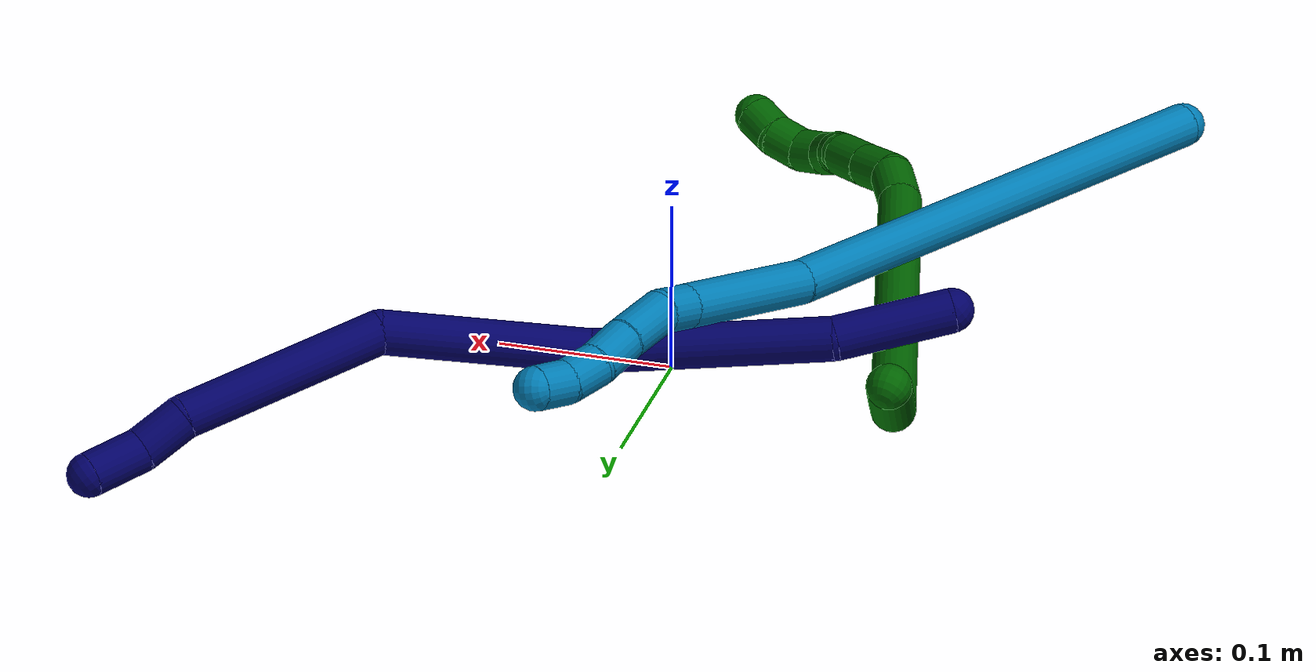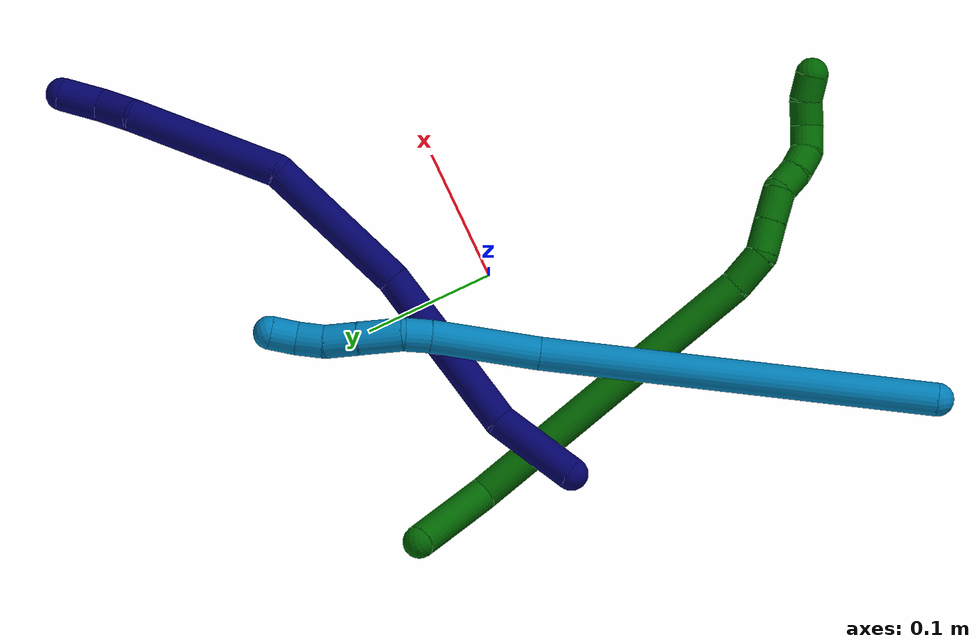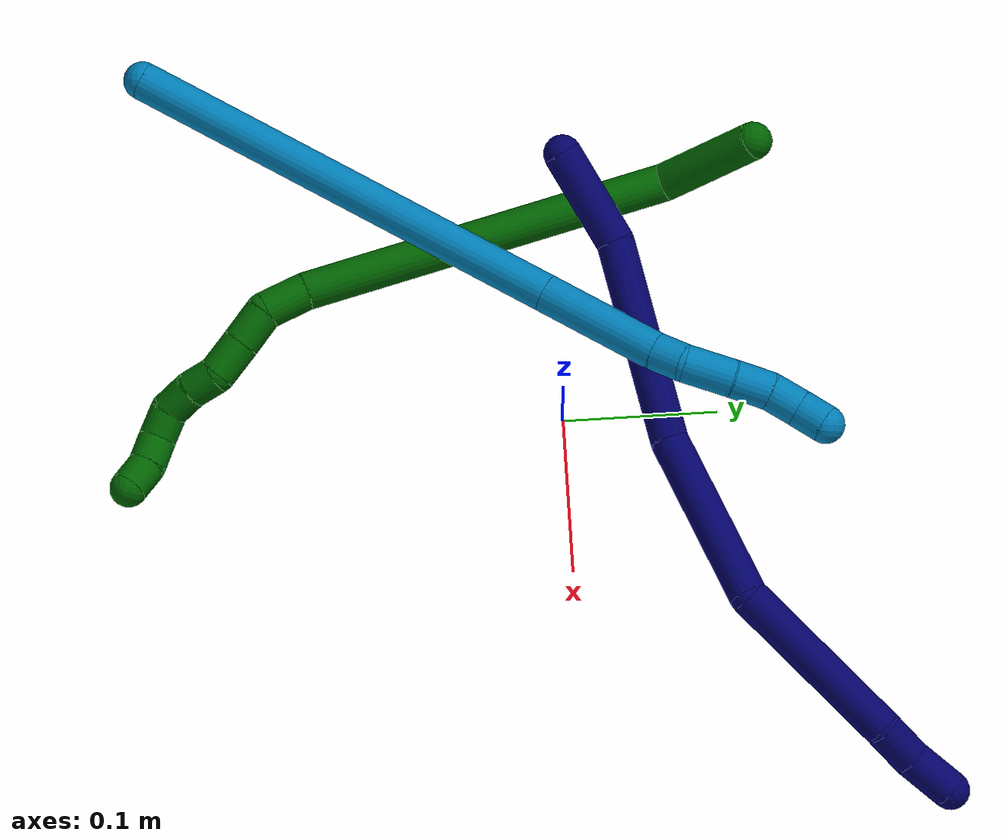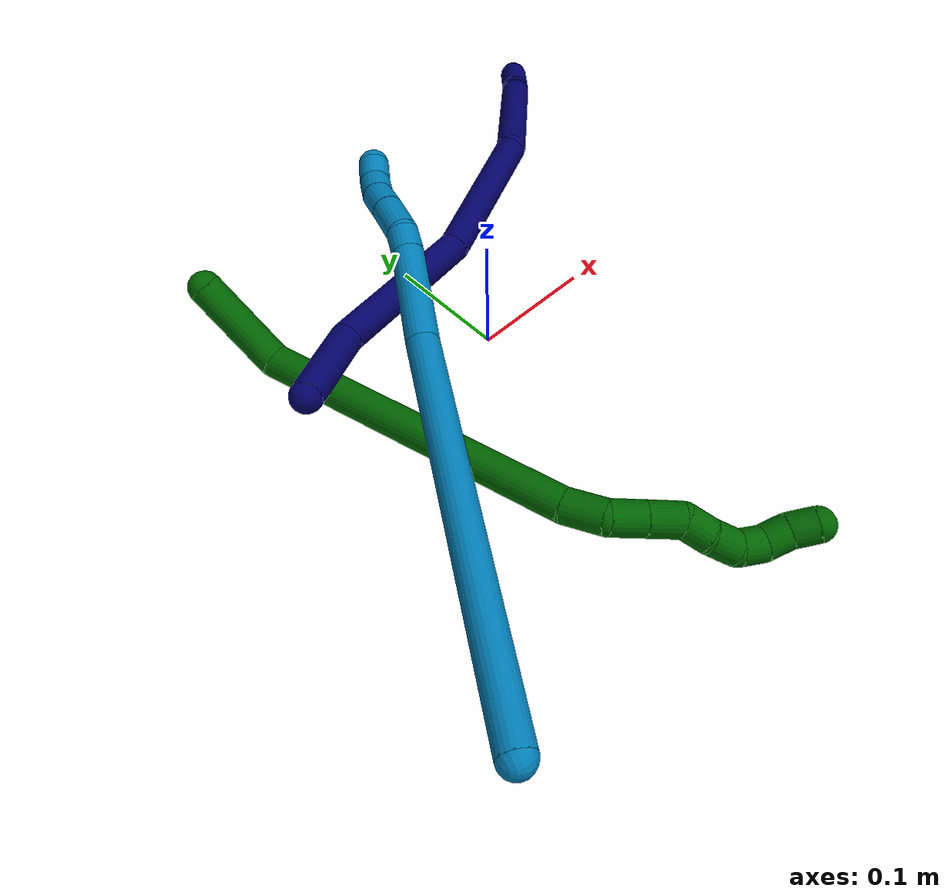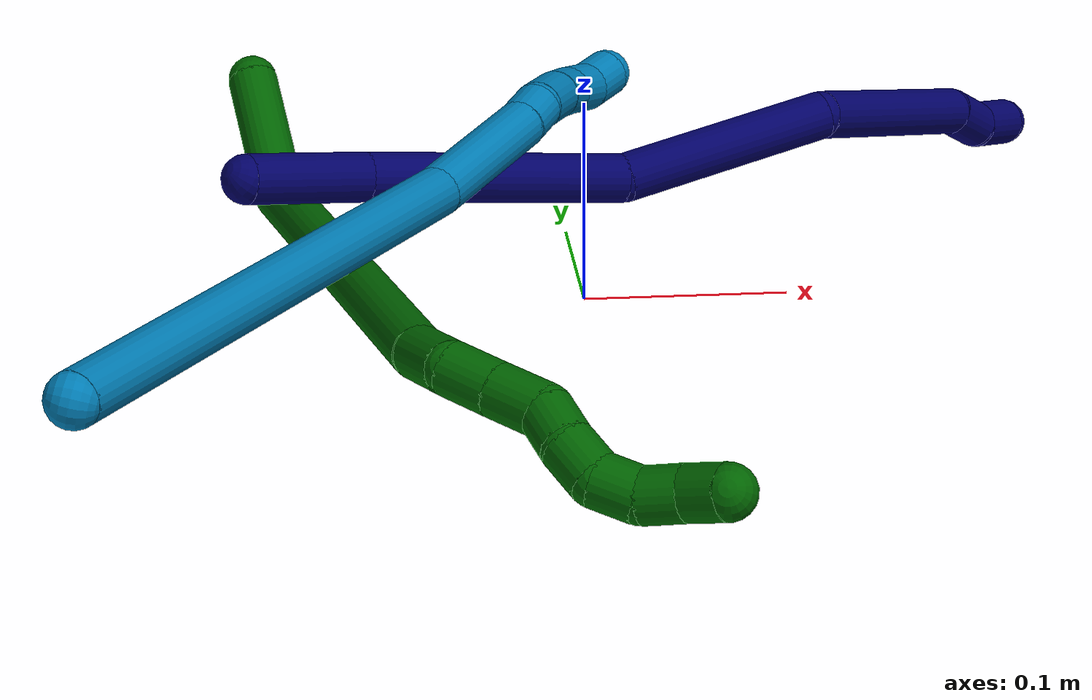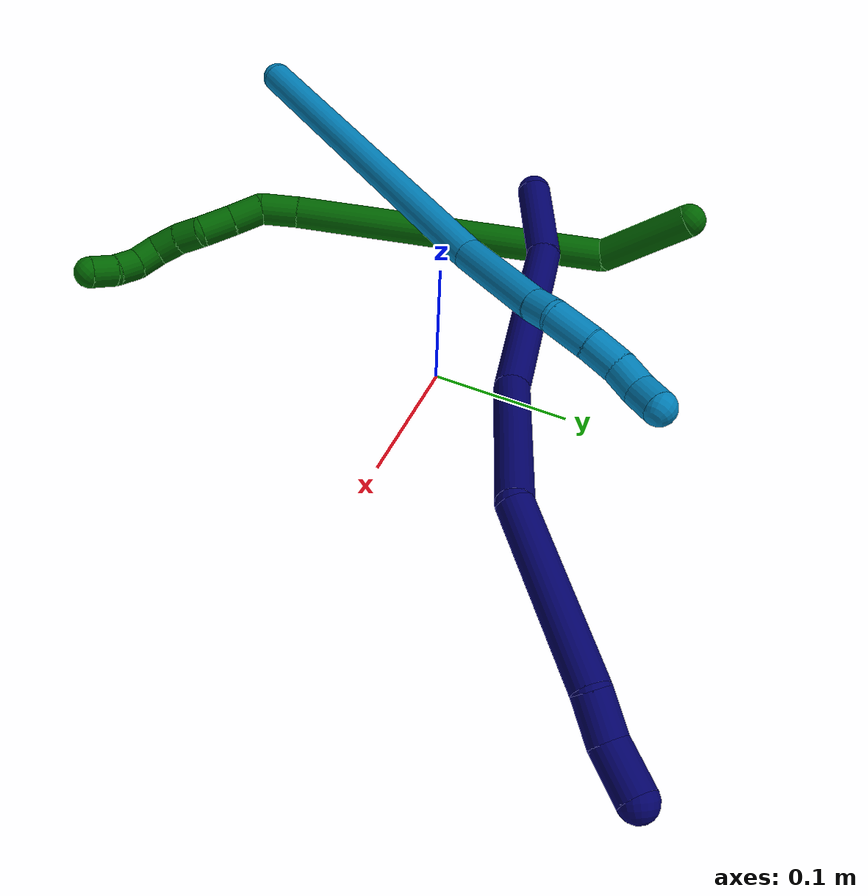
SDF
<sdf version="1.7">
 <world name="default">
  <model name="photoneo_s_sensor">
   <static>1</static>
   <pose>0 0 2 1.57079 1.57079 3.14159</pose>
   <link name="link">
    <inertial><mass>0.1</mass></inertial>
    <sensor name="sensor" type="depth">
     <update_rate>30</update_rate>
     <camera>
      <horizontal_fov>1.22</horizontal_fov>
      <image><width>1920</width><height>1200</height><format>B8G8R8</format></image>
      <clip><near>0.1</near><far>4</far></clip>
      <depth_camera><output>points</output></depth_camera>
     </camera>
     <plugin name="camera_plugin" filename="libgazebo_ros_depth_camera.so">
      <baseline>0.2</baseline>
      <alwaysOn>1</alwaysOn>
      <updateRate>0.0</updateRate>
      <cameraName>camera_ir</cameraName>
      <imageTopicName>/camera/color/image_raw</imageTopicName>
      <cameraInfoTopicName>/camera/color/camera_info</cameraInfoTopicName>
      <depthImageTopicName>/camera/depth/image_raw</depthImageTopicName>
      <depthImageCameraInfoTopicName>/camera/depth/camera_info</depthImageCameraInfoTopicName>
      <pointCloudTopicName>/camera/depth/points</pointCloudTopicName>
      <frameName>fr_optical</frameName>
      <pointCloudCutoff>0.1</pointCloudCutoff>
      <pointCloudCutoffMax>2.0</pointCloudCutoffMax>
      <distortionK1>0</distortionK1>
      <distortionK2>0</distortionK2>
      <distortionK3>0</distortionK3>
      <distortionT1>0</distortionT1>
      <distortionT2>0</distortionT2>
      <CxPrime>0</CxPrime>
      <Cx>0</Cx>
      <Cy>0</Cy>
      <focalLength>0</focalLength>
      <hackBaseline>0</hackBaseline>
     </plugin>
    </sensor>
   </link>
  </model>
  <model name="bin">
   <static>1</static>
   <link name="bottom">
    <collision name="collision-bottom">
     <pose>0 0 -0.01 0 -0 0</pose>
     <geometry><box><size>0.8 0.6 0.02</size></box></geometry>
     <surface>
      <friction><ode><mu>100</mu><mu2>100</mu2></ode></friction>
      <contact><collide_bitmask>65535</collide_bitmask></contact>
     </surface>
    </collision>
   </link>
   <link name="west_wall">
    <collision name="collision-west_wall">
     <pose>-0.41 0 0.1 0 -0 0</pose>
     <geometry><box><size>0.02 0.6 0.2</size></box></geometry>
     <surface>
      <friction><ode><mu>100</mu><mu2>100</mu2></ode></friction>
      <contact><collide_bitmask>65535</collide_bitmask></contact>
     </surface>
    </collision>
   </link>
   <link name="east_wall">
    <collision name="collision-east_wall">
     <pose>0.41 0 0.1 0 -0 0</pose>
     <geometry><box><size>0.02 0.6 0.2</size></box></geometry>
     <surface>
      <friction><ode><mu>100</mu><mu2>100</mu2></ode></friction>
      <contact><collide_bitmask>65535</collide_bitmask></contact>
     </surface>
    </collision>
   </link>
   <link name="south_wall">
    <collision name="collision-south_wall">
     <pose>0 -0.31 0.1 0 -0 0</pose>
     <geometry><box><size>0.8 0.02 0.2</size></box></geometry>
     <surface>
      <friction><ode><mu>100</mu><mu2>100</mu2></ode></friction>
      <contact><collide_bitmask>65535</collide_bitmask></contact>
     </surface>
    </collision>
   </link>
   <link name="north_wall">
    <collision name="collision-north_wall">
     <pose>0 0.31 0.1 0 -0 0</pose>
     <geometry><box><size>0.8 0.02 0.2</size></box></geometry>
     <surface>
      <friction><ode><mu>100</mu><mu2>100</mu2></ode></friction>
      <contact><collide_bitmask>65535</collide_bitmask></contact>
     </surface>
    </collision>
   </link>
  </model>
  <model name="6">
   <static>0</static>
   <link name="6">
    <collision name="collision-cylinder-e_1_1_4">
     <pose>-0.005875 -0.034379 0.011706 1.24262 -0.160377 -0.114933</pose>
     <geometry><cylinder><radius>0.0125</radius><length>0.073578</length></cylinder></geometry>
     <surface>
      <friction><ode><mu>1.16</mu><mu2>1.16</mu2><slip1>0</slip1><slip2>0</slip2></ode></friction>
      <contact><ode><kp>1e+06</kp><kd>1</kd><max_vel>0</max_vel><min_depth>0.001</min_depth></ode></contact>
     </surface>
    </collision>
    <visual name="visual-cylinder-e_1_1_4">
     <pose>-0.005875 -0.034379 0.011706 1.24262 -0.160377 -0.114933</pose>
     <geometry><cylinder><radius>0.0125</radius><length>0.073578</length></cylinder></geometry>
     <material><ambient>0 0.392157 0.003922 1</ambient></material>
    </visual>
    <collision name="collision-cylinder-e_2_4_5">
     <pose>0.00633 -0.141593 0.119594 0.648134 0.148746 0.050047</pose>
     <geometry><cylinder><radius>0.0125</radius><length>0.243992</length></cylinder></geometry>
     <surface>
      <friction><ode><mu>1.16</mu><mu2>1.16</mu2><slip1>0</slip1><slip2>0</slip2></ode></friction>
      <contact><ode><kp>1e+06</kp><kd>1</kd><max_vel>0</max_vel><min_depth>0.001</min_depth></ode></contact>
     </surface>
    </collision>
    <visual name="visual-cylinder-e_2_4_5">
     <pose>0.00633 -0.141593 0.119594 0.648134 0.148746 0.050047</pose>
     <geometry><cylinder><radius>0.0125</radius><length>0.243992</length></cylinder></geometry>
     <material><ambient>0 0.392157 0.003922 1</ambient></material>
    </visual>
    <collision name="collision-cylinder-e_3_5_6">
     <pose>0.029378 -0.222939 0.227018 0.647995 0.338847 0.114771</pose>
     <geometry><cylinder><radius>0.0125</radius><length>0.029899</length></cylinder></geometry>
     <surface>
      <friction><ode><mu>1.16</mu><mu2>1.16</mu2><slip1>0</slip1><slip2>0</slip2></ode></friction>
      <contact><ode><kp>1e+06</kp><kd>1</kd><max_vel>0</max_vel><min_depth>0.001</min_depth></ode></contact>
     </surface>
    </collision>
    <visual name="visual-cylinder-e_3_5_6">
     <pose>0.029378 -0.222939 0.227018 0.647995 0.338847 0.114771</pose>
     <geometry><cylinder><radius>0.0125</radius><length>0.029899</length></cylinder></geometry>
     <material><ambient>0 0.392157 0.003922 1</ambient></material>
    </visual>
    <collision name="collision-cylinder-e_4_6_7">
     <pose>0.04146 -0.241097 0.242552 1.15217 0.592751 0.391644</pose>
     <geometry><cylinder><radius>0.0125</radius><length>0.025463</length></cylinder></geometry>
     <surface>
      <friction><ode><mu>1.16</mu><mu2>1.16</mu2><slip1>0</slip1><slip2>0</slip2></ode></friction>
      <contact><ode><kp>1e+06</kp><kd>1</kd><max_vel>0</max_vel><min_depth>0.001</min_depth></ode></contact>
     </surface>
    </collision>
    <visual name="visual-cylinder-e_4_6_7">
     <pose>0.04146 -0.241097 0.242552 1.15217 0.592751 0.391644</pose>
     <geometry><cylinder><radius>0.0125</radius><length>0.025463</length></cylinder></geometry>
     <material><ambient>0 0.392157 0.003922 1</ambient></material>
    </visual>
    <collision name="collision-cylinder-e_5_7_8">
     <pose>0.055779 -0.260346 0.251528 1.11695 0.593486 0.377556</pose>
     <geometry><cylinder><radius>0.0125</radius><length>0.025773</length></cylinder></geometry>
     <surface>
      <friction><ode><mu>1.16</mu><mu2>1.16</mu2><slip1>0</slip1><slip2>0</slip2></ode></friction>
      <contact><ode><kp>1e+06</kp><kd>1</kd><max_vel>0</max_vel><min_depth>0.001</min_depth></ode></contact>
     </surface>
    </collision>
    <visual name="visual-cylinder-e_5_7_8">
     <pose>0.055779 -0.260346 0.251528 1.11695 0.593486 0.377556</pose>
     <geometry><cylinder><radius>0.0125</radius><length>0.025773</length></cylinder></geometry>
     <material><ambient>0 0.392157 0.003922 1</ambient></material>
    </visual>
    <collision name="collision-cylinder-e_6_8_9">
     <pose>0.063926 -0.278951 0.260802 1.09926 0.092732 0.056833</pose>
     <geometry><cylinder><radius>0.0125</radius><length>0.0203</length></cylinder></geometry>
     <surface>
      <friction><ode><mu>1.16</mu><mu2>1.16</mu2><slip1>0</slip1><slip2>0</slip2></ode></friction>
      <contact><ode><kp>1e+06</kp><kd>1</kd><max_vel>0</max_vel><min_depth>0.001</min_depth></ode></contact>
     </surface>
    </collision>
    <visual name="visual-cylinder-e_6_8_9">
     <pose>0.063926 -0.278951 0.260802 1.09926 0.092732 0.056833</pose>
     <geometry><cylinder><radius>0.0125</radius><length>0.0203</length></cylinder></geometry>
     <material><ambient>0 0.392157 0.003922 1</ambient></material>
    </visual>
    <collision name="collision-cylinder-e_7_9_10">
     <pose>0.067172 -0.297599 0.268614 1.24847 0.223045 0.160985</pose>
     <geometry><cylinder><radius>0.0125</radius><length>0.020853</length></cylinder></geometry>
     <surface>
      <friction><ode><mu>1.16</mu><mu2>1.16</mu2><slip1>0</slip1><slip2>0</slip2></ode></friction>
      <contact><ode><kp>1e+06</kp><kd>1</kd><max_vel>0</max_vel><min_depth>0.001</min_depth></ode></contact>
     </surface>
    </collision>
    <visual name="visual-cylinder-e_7_9_10">
     <pose>0.067172 -0.297599 0.268614 1.24847 0.223045 0.160985</pose>
     <geometry><cylinder><radius>0.0125</radius><length>0.020853</length></cylinder></geometry>
     <material><ambient>0 0.392157 0.003922 1</ambient></material>
    </visual>
    <collision name="collision-cylinder-e_8_10_11">
     <pose>0.076133 -0.314638 0.273103 1.40107 0.725626 0.619577</pose>
     <geometry><cylinder><radius>0.0125</radius><length>0.020057</length></cylinder></geometry>
     <surface>
      <friction><ode><mu>1.16</mu><mu2>1.16</mu2><slip1>0</slip1><slip2>0</slip2></ode></friction>
      <contact><ode><kp>1e+06</kp><kd>1</kd><max_vel>0</max_vel><min_depth>0.001</min_depth></ode></contact>
     </surface>
    </collision>
    <visual name="visual-cylinder-e_8_10_11">
     <pose>0.076133 -0.314638 0.273103 1.40107 0.725626 0.619577</pose>
     <geometry><cylinder><radius>0.0125</radius><length>0.020057</length></cylinder></geometry>
     <material><ambient>0 0.392157 0.003922 1</ambient></material>
    </visual>
    <collision name="collision-cylinder-e_9_11_12">
     <pose>0.091519 -0.326153 0.277056 0.993019 1.0577 0.613232</pose>
     <geometry><cylinder><radius>0.0125</radius><length>0.020043</length></cylinder></geometry>
     <surface>
      <friction><ode><mu>1.16</mu><mu2>1.16</mu2><slip1>0</slip1><slip2>0</slip2></ode></friction>
      <contact><ode><kp>1e+06</kp><kd>1</kd><max_vel>0</max_vel><min_depth>0.001</min_depth></ode></contact>
     </surface>
    </collision>
    <visual name="visual-cylinder-e_9_11_12">
     <pose>0.091519 -0.326153 0.277056 0.993019 1.0577 0.613232</pose>
     <geometry><cylinder><radius>0.0125</radius><length>0.020043</length></cylinder></geometry>
     <material><ambient>0 0.392157 0.003922 1</ambient></material>
    </visual>
    <collision name="collision-cylinder-e_10_12_2">
     <pose>0.107665 -0.334522 0.284978 0.681732 0.832885 0.311249</pose>
     <geometry><cylinder><radius>0.0125</radius><length>0.020043</length></cylinder></geometry>
     <surface>
      <friction><ode><mu>1.16</mu><mu2>1.16</mu2><slip1>0</slip1><slip2>0</slip2></ode></friction>
      <contact><ode><kp>1e+06</kp><kd>1</kd><max_vel>0</max_vel><min_depth>0.001</min_depth></ode></contact>
     </surface>
    </collision>
    <visual name="visual-cylinder-e_10_12_2">
     <pose>0.107665 -0.334522 0.284978 0.681732 0.832885 0.311249</pose>
     <geometry><cylinder><radius>0.0125</radius><length>0.020043</length></cylinder></geometry>
     <material><ambient>0 0.392157 0.003922 1</ambient></material>
    </visual>
    <collision name="collision-sphere-2">
     <pose>0.115079 -0.33877 0.290213 0 -0 0</pose>
     <geometry><sphere><radius>0.0125</radius></sphere></geometry>
     <surface>
      <friction><ode><mu>1.16</mu><mu2>1.16</mu2><slip1>0</slip1><slip2>0</slip2></ode></friction>
      <contact><ode><kp>1e+06</kp><kd>1</kd><max_vel>0</max_vel><min_depth>0.001</min_depth></ode></contact>
     </surface>
    </collision>
    <visual name="visual-sphere-2">
     <pose>0.115079 -0.33877 0.290213 0 -0 0</pose>
     <geometry><sphere><radius>0.0125</radius></sphere></geometry>
     <material><ambient>0 0.392157 0.003922 1</ambient></material>
    </visual>
    <collision name="collision-sphere-12">
     <pose>0.10025 -0.330274 0.279743 0 -0 0</pose>
     <geometry><sphere><radius>0.0125</radius></sphere></geometry>
     <surface>
      <friction><ode><mu>1.16</mu><mu2>1.16</mu2><slip1>0</slip1><slip2>0</slip2></ode></friction>
      <contact><ode><kp>1e+06</kp><kd>1</kd><max_vel>0</max_vel><min_depth>0.001</min_depth></ode></contact>
     </surface>
    </collision>
    <visual name="visual-sphere-12">
     <pose>0.10025 -0.330274 0.279743 0 -0 0</pose>
     <geometry><sphere><radius>0.0125</radius></sphere></geometry>
     <material><ambient>0 0.392157 0.003922 1</ambient></material>
    </visual>
    <collision name="collision-sphere-11">
     <pose>0.082788 -0.322032 0.27437 0 -0 0</pose>
     <geometry><sphere><radius>0.0125</radius></sphere></geometry>
     <surface>
      <friction><ode><mu>1.16</mu><mu2>1.16</mu2><slip1>0</slip1><slip2>0</slip2></ode></friction>
      <contact><ode><kp>1e+06</kp><kd>1</kd><max_vel>0</max_vel><min_depth>0.001</min_depth></ode></contact>
     </surface>
    </collision>
    <visual name="visual-sphere-11">
     <pose>0.082788 -0.322032 0.27437 0 -0 0</pose>
     <geometry><sphere><radius>0.0125</radius></sphere></geometry>
     <material><ambient>0 0.392157 0.003922 1</ambient></material>
    </visual>
    <collision name="collision-sphere-10">
     <pose>0.069478 -0.307243 0.271835 0 -0 0</pose>
     <geometry><sphere><radius>0.0125</radius></sphere></geometry>
     <surface>
      <friction><ode><mu>1.16</mu><mu2>1.16</mu2><slip1>0</slip1><slip2>0</slip2></ode></friction>
      <contact><ode><kp>1e+06</kp><kd>1</kd><max_vel>0</max_vel><min_depth>0.001</min_depth></ode></contact>
     </surface>
    </collision>
    <visual name="visual-sphere-10">
     <pose>0.069478 -0.307243 0.271835 0 -0 0</pose>
     <geometry><sphere><radius>0.0125</radius></sphere></geometry>
     <material><ambient>0 0.392157 0.003922 1</ambient></material>
    </visual>
    <collision name="collision-sphere-9">
     <pose>0.064866 -0.287954 0.265393 0 -0 0</pose>
     <geometry><sphere><radius>0.0125</radius></sphere></geometry>
     <surface>
      <friction><ode><mu>1.16</mu><mu2>1.16</mu2><slip1>0</slip1><slip2>0</slip2></ode></friction>
      <contact><ode><kp>1e+06</kp><kd>1</kd><max_vel>0</max_vel><min_depth>0.001</min_depth></ode></contact>
     </surface>
    </collision>
    <visual name="visual-sphere-9">
     <pose>0.064866 -0.287954 0.265393 0 -0 0</pose>
     <geometry><sphere><radius>0.0125</radius></sphere></geometry>
     <material><ambient>0 0.392157 0.003922 1</ambient></material>
    </visual>
    <collision name="collision-sphere-4">
     <pose>-0.01175 -0.068758 0.023411 0 -0 0</pose>
     <geometry><sphere><radius>0.0125</radius></sphere></geometry>
     <surface>
      <friction><ode><mu>1.16</mu><mu2>1.16</mu2><slip1>0</slip1><slip2>0</slip2></ode></friction>
      <contact><ode><kp>1e+06</kp><kd>1</kd><max_vel>0</max_vel><min_depth>0.001</min_depth></ode></contact>
     </surface>
    </collision>
    <visual name="visual-sphere-4">
     <pose>-0.01175 -0.068758 0.023411 0 -0 0</pose>
     <geometry><sphere><radius>0.0125</radius></sphere></geometry>
     <material><ambient>0 0.392157 0.003922 1</ambient></material>
    </visual>
    <collision name="collision-sphere-1">
     <geometry><sphere><radius>0.0125</radius></sphere></geometry>
     <surface>
      <friction><ode><mu>1.16</mu><mu2>1.16</mu2><slip1>0</slip1><slip2>0</slip2></ode></friction>
      <contact><ode><kp>1e+06</kp><kd>1</kd><max_vel>0</max_vel><min_depth>0.001</min_depth></ode></contact>
     </surface>
    </collision>
    <visual name="visual-sphere-1">
     <geometry><sphere><radius>0.0125</radius></sphere></geometry>
     <material><ambient>0 0.392157 0.003922 1</ambient></material>
    </visual>
    <collision name="collision-sphere-8">
     <pose>0.062986 -0.269947 0.256211 0 -0 0</pose>
     <geometry><sphere><radius>0.0125</radius></sphere></geometry>
     <surface>
      <friction><ode><mu>1.16</mu><mu2>1.16</mu2><slip1>0</slip1><slip2>0</slip2></ode></friction>
      <contact><ode><kp>1e+06</kp><kd>1</kd><max_vel>0</max_vel><min_depth>0.001</min_depth></ode></contact>
     </surface>
    </collision>
    <visual name="visual-sphere-8">
     <pose>0.062986 -0.269947 0.256211 0 -0 0</pose>
     <geometry><sphere><radius>0.0125</radius></sphere></geometry>
     <material><ambient>0 0.392157 0.003922 1</ambient></material>
    </visual>
    <collision name="collision-sphere-5">
     <pose>0.024409 -0.214429 0.215776 0 -0 0</pose>
     <geometry><sphere><radius>0.0125</radius></sphere></geometry>
     <surface>
      <friction><ode><mu>1.16</mu><mu2>1.16</mu2><slip1>0</slip1><slip2>0</slip2></ode></friction>
      <contact><ode><kp>1e+06</kp><kd>1</kd><max_vel>0</max_vel><min_depth>0.001</min_depth></ode></contact>
     </surface>
    </collision>
    <visual name="visual-sphere-5">
     <pose>0.024409 -0.214429 0.215776 0 -0 0</pose>
     <geometry><sphere><radius>0.0125</radius></sphere></geometry>
     <material><ambient>0 0.392157 0.003922 1</ambient></material>
    </visual>
    <collision name="collision-sphere-6">
     <pose>0.034348 -0.231449 0.238259 0 -0 0</pose>
     <geometry><sphere><radius>0.0125</radius></sphere></geometry>
     <surface>
      <friction><ode><mu>1.16</mu><mu2>1.16</mu2><slip1>0</slip1><slip2>0</slip2></ode></friction>
      <contact><ode><kp>1e+06</kp><kd>1</kd><max_vel>0</max_vel><min_depth>0.001</min_depth></ode></contact>
     </surface>
    </collision>
    <visual name="visual-sphere-6">
     <pose>0.034348 -0.231449 0.238259 0 -0 0</pose>
     <geometry><sphere><radius>0.0125</radius></sphere></geometry>
     <material><ambient>0 0.392157 0.003922 1</ambient></material>
    </visual>
    <collision name="collision-sphere-7">
     <pose>0.048572 -0.250745 0.246844 0 -0 0</pose>
     <geometry><sphere><radius>0.0125</radius></sphere></geometry>
     <surface>
      <friction><ode><mu>1.16</mu><mu2>1.16</mu2><slip1>0</slip1><slip2>0</slip2></ode></friction>
      <contact><ode><kp>1e+06</kp><kd>1</kd><max_vel>0</max_vel><min_depth>0.001</min_depth></ode></contact>
     </surface>
    </collision>
    <visual name="visual-sphere-7">
     <pose>0.048572 -0.250745 0.246844 0 -0 0</pose>
     <geometry><sphere><radius>0.0125</radius></sphere></geometry>
     <material><ambient>0 0.392157 0.003922 1</ambient></material>
    </visual>
    <inertial>
     <pose>0.025403 -0.176025 0.154251 0 -0 0</pose>
     <mass>0.5</mass>
     <inertia>
      <ixx>0.001321</ixx>
      <ixy>0</ixy>
      <ixz>0</ixz>
      <iyy>0.001032</iyy>
      <iyz>0</iyz>
      <izz>0.000613</izz>
     </inertia>
    </inertial>
   </link>
   <pose>-0.159546 0.13229 0.077749 0.968538 -0.423059 0.091911</pose>
  </model>
  <model name="7">
   <static>0</static>
   <link name="7">
    <collision name="collision-cylinder-e_1_1_4">
     <pose>0.012887 0.004911 0.030326 -0.160545 0.397186 -0.032376</pose>
     <geometry><cylinder><radius>0.0125</radius><length>0.066628</length></cylinder></geometry>
     <surface>
      <friction><ode><mu>1.16</mu><mu2>1.16</mu2><slip1>0</slip1><slip2>0</slip2></ode></friction>
      <contact><ode><kp>1e+06</kp><kd>1</kd><max_vel>0</max_vel><min_depth>0.001</min_depth></ode></contact>
     </surface>
    </collision>
    <visual name="visual-cylinder-e_1_1_4">
     <pose>0.012887 0.004911 0.030326 -0.160545 0.397186 -0.032376</pose>
     <geometry><cylinder><radius>0.0125</radius><length>0.066628</length></cylinder></geometry>
     <material><ambient>0.003922 0 0.403922 1</ambient></material>
    </visual>
    <collision name="collision-cylinder-e_2_4_5">
     <pose>0.049736 0.038043 0.116355 -0.468937 0.366404 -0.088455</pose>
     <geometry><cylinder><radius>0.0125</radius><length>0.133769</length></cylinder></geometry>
     <surface>
      <friction><ode><mu>1.16</mu><mu2>1.16</mu2><slip1>0</slip1><slip2>0</slip2></ode></friction>
      <contact><ode><kp>1e+06</kp><kd>1</kd><max_vel>0</max_vel><min_depth>0.001</min_depth></ode></contact>
     </surface>
    </collision>
    <visual name="visual-cylinder-e_2_4_5">
     <pose>0.049736 0.038043 0.116355 -0.468937 0.366404 -0.088455</pose>
     <geometry><cylinder><radius>0.0125</radius><length>0.133769</length></cylinder></geometry>
     <material><ambient>0.003922 0 0.403922 1</ambient></material>
    </visual>
    <collision name="collision-cylinder-e_3_5_6">
     <pose>0.109763 0.083581 0.215048 -0.382926 0.661294 -0.132873</pose>
     <geometry><cylinder><radius>0.0125</radius><length>0.117449</length></cylinder></geometry>
     <surface>
      <friction><ode><mu>1.16</mu><mu2>1.16</mu2><slip1>0</slip1><slip2>0</slip2></ode></friction>
      <contact><ode><kp>1e+06</kp><kd>1</kd><max_vel>0</max_vel><min_depth>0.001</min_depth></ode></contact>
     </surface>
    </collision>
    <visual name="visual-cylinder-e_3_5_6">
     <pose>0.109763 0.083581 0.215048 -0.382926 0.661294 -0.132873</pose>
     <geometry><cylinder><radius>0.0125</radius><length>0.117449</length></cylinder></geometry>
     <material><ambient>0.003922 0 0.403922 1</ambient></material>
    </visual>
    <collision name="collision-cylinder-e_4_6_7">
     <pose>0.168991 0.093817 0.313256 0.127515 0.394286 0.025503</pose>
     <geometry><cylinder><radius>0.0125</radius><length>0.120595</length></cylinder></geometry>
     <surface>
      <friction><ode><mu>1.16</mu><mu2>1.16</mu2><slip1>0</slip1><slip2>0</slip2></ode></friction>
      <contact><ode><kp>1e+06</kp><kd>1</kd><max_vel>0</max_vel><min_depth>0.001</min_depth></ode></contact>
     </surface>
    </collision>
    <visual name="visual-cylinder-e_4_6_7">
     <pose>0.168991 0.093817 0.313256 0.127515 0.394286 0.025503</pose>
     <geometry><cylinder><radius>0.0125</radius><length>0.120595</length></cylinder></geometry>
     <material><ambient>0.003922 0 0.403922 1</ambient></material>
    </visual>
    <collision name="collision-cylinder-e_5_7_8">
     <pose>0.19373 0.084309 0.382623 0.169993 0.10929 0.009321</pose>
     <geometry><cylinder><radius>0.0125</radius><length>0.028882</length></cylinder></geometry>
     <surface>
      <friction><ode><mu>1.16</mu><mu2>1.16</mu2><slip1>0</slip1><slip2>0</slip2></ode></friction>
      <contact><ode><kp>1e+06</kp><kd>1</kd><max_vel>0</max_vel><min_depth>0.001</min_depth></ode></contact>
     </surface>
    </collision>
    <visual name="visual-cylinder-e_5_7_8">
     <pose>0.19373 0.084309 0.382623 0.169993 0.10929 0.009321</pose>
     <geometry><cylinder><radius>0.0125</radius><length>0.028882</length></cylinder></geometry>
     <material><ambient>0.003922 0 0.403922 1</ambient></material>
    </visual>
    <collision name="collision-cylinder-e_6_8_2">
     <pose>0.201881 0.078518 0.411344 0.226776 0.414271 0.047853</pose>
     <geometry><cylinder><radius>0.0125</radius><length>0.032675</length></cylinder></geometry>
     <surface>
      <friction><ode><mu>1.16</mu><mu2>1.16</mu2><slip1>0</slip1><slip2>0</slip2></ode></friction>
      <contact><ode><kp>1e+06</kp><kd>1</kd><max_vel>0</max_vel><min_depth>0.001</min_depth></ode></contact>
     </surface>
    </collision>
    <visual name="visual-cylinder-e_6_8_2">
     <pose>0.201881 0.078518 0.411344 0.226776 0.414271 0.047853</pose>
     <geometry><cylinder><radius>0.0125</radius><length>0.032675</length></cylinder></geometry>
     <material><ambient>0.003922 0 0.403922 1</ambient></material>
    </visual>
    <collision name="collision-sphere-2">
     <pose>0.208457 0.075155 0.425917 0 -0 0</pose>
     <geometry><sphere><radius>0.0125</radius></sphere></geometry>
     <surface>
      <friction><ode><mu>1.16</mu><mu2>1.16</mu2><slip1>0</slip1><slip2>0</slip2></ode></friction>
      <contact><ode><kp>1e+06</kp><kd>1</kd><max_vel>0</max_vel><min_depth>0.001</min_depth></ode></contact>
     </surface>
    </collision>
    <visual name="visual-sphere-2">
     <pose>0.208457 0.075155 0.425917 0 -0 0</pose>
     <geometry><sphere><radius>0.0125</radius></sphere></geometry>
     <material><ambient>0.003922 0 0.403922 1</ambient></material>
    </visual>
    <collision name="collision-sphere-4">
     <pose>0.025774 0.009822 0.060652 0 -0 0</pose>
     <geometry><sphere><radius>0.0125</radius></sphere></geometry>
     <surface>
      <friction><ode><mu>1.16</mu><mu2>1.16</mu2><slip1>0</slip1><slip2>0</slip2></ode></friction>
      <contact><ode><kp>1e+06</kp><kd>1</kd><max_vel>0</max_vel><min_depth>0.001</min_depth></ode></contact>
     </surface>
    </collision>
    <visual name="visual-sphere-4">
     <pose>0.025774 0.009822 0.060652 0 -0 0</pose>
     <geometry><sphere><radius>0.0125</radius></sphere></geometry>
     <material><ambient>0.003922 0 0.403922 1</ambient></material>
    </visual>
    <collision name="collision-sphere-1">
     <geometry><sphere><radius>0.0125</radius></sphere></geometry>
     <surface>
      <friction><ode><mu>1.16</mu><mu2>1.16</mu2><slip1>0</slip1><slip2>0</slip2></ode></friction>
      <contact><ode><kp>1e+06</kp><kd>1</kd><max_vel>0</max_vel><min_depth>0.001</min_depth></ode></contact>
     </surface>
    </collision>
    <visual name="visual-sphere-1">
     <geometry><sphere><radius>0.0125</radius></sphere></geometry>
     <material><ambient>0.003922 0 0.403922 1</ambient></material>
    </visual>
    <collision name="collision-sphere-8">
     <pose>0.195305 0.081881 0.396771 0 -0 0</pose>
     <geometry><sphere><radius>0.0125</radius></sphere></geometry>
     <surface>
      <friction><ode><mu>1.16</mu><mu2>1.16</mu2><slip1>0</slip1><slip2>0</slip2></ode></friction>
      <contact><ode><kp>1e+06</kp><kd>1</kd><max_vel>0</max_vel><min_depth>0.001</min_depth></ode></contact>
     </surface>
    </collision>
    <visual name="visual-sphere-8">
     <pose>0.195305 0.081881 0.396771 0 -0 0</pose>
     <geometry><sphere><radius>0.0125</radius></sphere></geometry>
     <material><ambient>0.003922 0 0.403922 1</ambient></material>
    </visual>
    <collision name="collision-sphere-5">
     <pose>0.073698 0.066264 0.172059 0 -0 0</pose>
     <geometry><sphere><radius>0.0125</radius></sphere></geometry>
     <surface>
      <friction><ode><mu>1.16</mu><mu2>1.16</mu2><slip1>0</slip1><slip2>0</slip2></ode></friction>
      <contact><ode><kp>1e+06</kp><kd>1</kd><max_vel>0</max_vel><min_depth>0.001</min_depth></ode></contact>
     </surface>
    </collision>
    <visual name="visual-sphere-5">
     <pose>0.073698 0.066264 0.172059 0 -0 0</pose>
     <geometry><sphere><radius>0.0125</radius></sphere></geometry>
     <material><ambient>0.003922 0 0.403922 1</ambient></material>
    </visual>
    <collision name="collision-sphere-6">
     <pose>0.145828 0.100897 0.258037 0 -0 0</pose>
     <geometry><sphere><radius>0.0125</radius></sphere></geometry>
     <surface>
      <friction><ode><mu>1.16</mu><mu2>1.16</mu2><slip1>0</slip1><slip2>0</slip2></ode></friction>
      <contact><ode><kp>1e+06</kp><kd>1</kd><max_vel>0</max_vel><min_depth>0.001</min_depth></ode></contact>
     </surface>
    </collision>
    <visual name="visual-sphere-6">
     <pose>0.145828 0.100897 0.258037 0 -0 0</pose>
     <geometry><sphere><radius>0.0125</radius></sphere></geometry>
     <material><ambient>0.003922 0 0.403922 1</ambient></material>
    </visual>
    <collision name="collision-sphere-7">
     <pose>0.192155 0.086738 0.368475 0 -0 0</pose>
     <geometry><sphere><radius>0.0125</radius></sphere></geometry>
     <surface>
      <friction><ode><mu>1.16</mu><mu2>1.16</mu2><slip1>0</slip1><slip2>0</slip2></ode></friction>
      <contact><ode><kp>1e+06</kp><kd>1</kd><max_vel>0</max_vel><min_depth>0.001</min_depth></ode></contact>
     </surface>
    </collision>
    <visual name="visual-sphere-7">
     <pose>0.192155 0.086738 0.368475 0 -0 0</pose>
     <geometry><sphere><radius>0.0125</radius></sphere></geometry>
     <material><ambient>0.003922 0 0.403922 1</ambient></material>
    </visual>
    <inertial>
     <pose>0.10595 0.063095 0.210223 0 -0 0</pose>
     <mass>0.5</mass>
     <inertia>
      <ixx>0.000459</ixx>
      <ixy>0</ixy>
      <ixz>0</ixz>
      <iyy>0.000479</iyy>
      <iyz>0</iyz>
      <izz>-0.000309</izz>
     </inertia>
    </inertial>
   </link>
   <pose>-0.162335 0.009544 0.063786 2.87542 -0.964402 0.881881</pose>
  </model>
  <model name="9">
   <static>0</static>
   <link name="9">
    <collision name="collision-cylinder-e_1_1_4">
     <pose>0.101123 0.091522 -0.058304 -2.13801 0.750149 -1.24492</pose>
     <geometry><cylinder><radius>0.0125</radius><length>0.296657</length></cylinder></geometry>
     <surface>
      <friction><ode><mu>1.16</mu><mu2>1.16</mu2><slip1>0</slip1><slip2>0</slip2></ode></friction>
      <contact><ode><kp>1e+06</kp><kd>1</kd><max_vel>0</max_vel><min_depth>0.001</min_depth></ode></contact>
     </surface>
    </collision>
    <visual name="visual-cylinder-e_1_1_4">
     <pose>0.101123 0.091522 -0.058304 -2.13801 0.750149 -1.24492</pose>
     <geometry><cylinder><radius>0.0125</radius><length>0.296657</length></cylinder></geometry>
     <material><ambient>0 0.490196 0.709804 1</ambient></material>
    </visual>
    <collision name="collision-cylinder-e_2_4_5">
     <pose>0.2343 0.203748 -0.132486 -2.22504 0.887581 -1.53388</pose>
     <geometry><cylinder><radius>0.0125</radius><length>0.082663</length></cylinder></geometry>
     <surface>
      <friction><ode><mu>1.16</mu><mu2>1.16</mu2><slip1>0</slip1><slip2>0</slip2></ode></friction>
      <contact><ode><kp>1e+06</kp><kd>1</kd><max_vel>0</max_vel><min_depth>0.001</min_depth></ode></contact>
     </surface>
    </collision>
    <visual name="visual-cylinder-e_2_4_5">
     <pose>0.2343 0.203748 -0.132486 -2.22504 0.887581 -1.53388</pose>
     <geometry><cylinder><radius>0.0125</radius><length>0.082663</length></cylinder></geometry>
     <material><ambient>0 0.490196 0.709804 1</ambient></material>
    </visual>
    <collision name="collision-cylinder-e_3_5_6">
     <pose>0.274547 0.229467 -0.1513 -2.10042 0.953944 -1.4671</pose>
     <geometry><cylinder><radius>0.0125</radius><length>0.020088</length></cylinder></geometry>
     <surface>
      <friction><ode><mu>1.16</mu><mu2>1.16</mu2><slip1>0</slip1><slip2>0</slip2></ode></friction>
      <contact><ode><kp>1e+06</kp><kd>1</kd><max_vel>0</max_vel><min_depth>0.001</min_depth></ode></contact>
     </surface>
    </collision>
    <visual name="visual-cylinder-e_3_5_6">
     <pose>0.274547 0.229467 -0.1513 -2.10042 0.953944 -1.4671</pose>
     <geometry><cylinder><radius>0.0125</radius><length>0.020088</length></cylinder></geometry>
     <material><ambient>0 0.490196 0.709804 1</ambient></material>
    </visual>
    <collision name="collision-cylinder-e_4_6_7">
     <pose>0.292904 0.247038 -0.158019 -1.86347 0.659288 -0.862961</pose>
     <geometry><cylinder><radius>0.0125</radius><length>0.033185</length></cylinder></geometry>
     <surface>
      <friction><ode><mu>1.16</mu><mu2>1.16</mu2><slip1>0</slip1><slip2>0</slip2></ode></friction>
      <contact><ode><kp>1e+06</kp><kd>1</kd><max_vel>0</max_vel><min_depth>0.001</min_depth></ode></contact>
     </surface>
    </collision>
    <visual name="visual-cylinder-e_4_6_7">
     <pose>0.292904 0.247038 -0.158019 -1.86347 0.659288 -0.862961</pose>
     <geometry><cylinder><radius>0.0125</radius><length>0.033185</length></cylinder></geometry>
     <material><ambient>0 0.490196 0.709804 1</ambient></material>
    </visual>
    <collision name="collision-cylinder-e_5_7_8">
     <pose>0.309917 0.269739 -0.164905 -1.86755 0.573418 -0.758358</pose>
     <geometry><cylinder><radius>0.0125</radius><length>0.025252</length></cylinder></geometry>
     <surface>
      <friction><ode><mu>1.16</mu><mu2>1.16</mu2><slip1>0</slip1><slip2>0</slip2></ode></friction>
      <contact><ode><kp>1e+06</kp><kd>1</kd><max_vel>0</max_vel><min_depth>0.001</min_depth></ode></contact>
     </surface>
    </collision>
    <visual name="visual-cylinder-e_5_7_8">
     <pose>0.309917 0.269739 -0.164905 -1.86755 0.573418 -0.758358</pose>
     <geometry><cylinder><radius>0.0125</radius><length>0.025252</length></cylinder></geometry>
     <material><ambient>0 0.490196 0.709804 1</ambient></material>
    </visual>
    <collision name="collision-cylinder-e_6_8_9">
     <pose>0.322822 0.28751 -0.172689 -2.12131 0.594769 -1.00218</pose>
     <geometry><cylinder><radius>0.0125</radius><length>0.021613</length></cylinder></geometry>
     <surface>
      <friction><ode><mu>1.16</mu><mu2>1.16</mu2><slip1>0</slip1><slip2>0</slip2></ode></friction>
      <contact><ode><kp>1e+06</kp><kd>1</kd><max_vel>0</max_vel><min_depth>0.001</min_depth></ode></contact>
     </surface>
    </collision>
    <visual name="visual-cylinder-e_6_8_9">
     <pose>0.322822 0.28751 -0.172689 -2.12131 0.594769 -1.00218</pose>
     <geometry><cylinder><radius>0.0125</radius><length>0.021613</length></cylinder></geometry>
     <material><ambient>0 0.490196 0.709804 1</ambient></material>
    </visual>
    <collision name="collision-cylinder-e_7_9_2">
     <pose>0.336603 0.300202 -0.181862 -2.29636 0.851373 -1.57898</pose>
     <geometry><cylinder><radius>0.0125</radius><length>0.020541</length></cylinder></geometry>
     <surface>
      <friction><ode><mu>1.16</mu><mu2>1.16</mu2><slip1>0</slip1><slip2>0</slip2></ode></friction>
      <contact><ode><kp>1e+06</kp><kd>1</kd><max_vel>0</max_vel><min_depth>0.001</min_depth></ode></contact>
     </surface>
    </collision>
    <visual name="visual-cylinder-e_7_9_2">
     <pose>0.336603 0.300202 -0.181862 -2.29636 0.851373 -1.57898</pose>
     <geometry><cylinder><radius>0.0125</radius><length>0.020541</length></cylinder></geometry>
     <material><ambient>0 0.490196 0.709804 1</ambient></material>
    </visual>
    <collision name="collision-sphere-2">
     <pose>0.344328 0.305265 -0.186353 0 -0 0</pose>
     <geometry><sphere><radius>0.0125</radius></sphere></geometry>
     <surface>
      <friction><ode><mu>1.16</mu><mu2>1.16</mu2><slip1>0</slip1><slip2>0</slip2></ode></friction>
      <contact><ode><kp>1e+06</kp><kd>1</kd><max_vel>0</max_vel><min_depth>0.001</min_depth></ode></contact>
     </surface>
    </collision>
    <visual name="visual-sphere-2">
     <pose>0.344328 0.305265 -0.186353 0 -0 0</pose>
     <geometry><sphere><radius>0.0125</radius></sphere></geometry>
     <material><ambient>0 0.490196 0.709804 1</ambient></material>
    </visual>
    <collision name="collision-sphere-9">
     <pose>0.328877 0.295138 -0.177371 0 -0 0</pose>
     <geometry><sphere><radius>0.0125</radius></sphere></geometry>
     <surface>
      <friction><ode><mu>1.16</mu><mu2>1.16</mu2><slip1>0</slip1><slip2>0</slip2></ode></friction>
      <contact><ode><kp>1e+06</kp><kd>1</kd><max_vel>0</max_vel><min_depth>0.001</min_depth></ode></contact>
     </surface>
    </collision>
    <visual name="visual-sphere-9">
     <pose>0.328877 0.295138 -0.177371 0 -0 0</pose>
     <geometry><sphere><radius>0.0125</radius></sphere></geometry>
     <material><ambient>0 0.490196 0.709804 1</ambient></material>
    </visual>
    <collision name="collision-sphere-4">
     <pose>0.202245 0.183044 -0.116607 0 -0 0</pose>
     <geometry><sphere><radius>0.0125</radius></sphere></geometry>
     <surface>
      <friction><ode><mu>1.16</mu><mu2>1.16</mu2><slip1>0</slip1><slip2>0</slip2></ode></friction>
      <contact><ode><kp>1e+06</kp><kd>1</kd><max_vel>0</max_vel><min_depth>0.001</min_depth></ode></contact>
     </surface>
    </collision>
    <visual name="visual-sphere-4">
     <pose>0.202245 0.183044 -0.116607 0 -0 0</pose>
     <geometry><sphere><radius>0.0125</radius></sphere></geometry>
     <material><ambient>0 0.490196 0.709804 1</ambient></material>
    </visual>
    <collision name="collision-sphere-1">
     <geometry><sphere><radius>0.0125</radius></sphere></geometry>
     <surface>
      <friction><ode><mu>1.16</mu><mu2>1.16</mu2><slip1>0</slip1><slip2>0</slip2></ode></friction>
      <contact><ode><kp>1e+06</kp><kd>1</kd><max_vel>0</max_vel><min_depth>0.001</min_depth></ode></contact>
     </surface>
    </collision>
    <visual name="visual-sphere-1">
     <geometry><sphere><radius>0.0125</radius></sphere></geometry>
     <material><ambient>0 0.490196 0.709804 1</ambient></material>
    </visual>
    <collision name="collision-sphere-8">
     <pose>0.316767 0.279882 -0.168006 0 -0 0</pose>
     <geometry><sphere><radius>0.0125</radius></sphere></geometry>
     <surface>
      <friction><ode><mu>1.16</mu><mu2>1.16</mu2><slip1>0</slip1><slip2>0</slip2></ode></friction>
      <contact><ode><kp>1e+06</kp><kd>1</kd><max_vel>0</max_vel><min_depth>0.001</min_depth></ode></contact>
     </surface>
    </collision>
    <visual name="visual-sphere-8">
     <pose>0.316767 0.279882 -0.168006 0 -0 0</pose>
     <geometry><sphere><radius>0.0125</radius></sphere></geometry>
     <material><ambient>0 0.490196 0.709804 1</ambient></material>
    </visual>
    <collision name="collision-sphere-5">
     <pose>0.266354 0.224452 -0.148365 0 -0 0</pose>
     <geometry><sphere><radius>0.0125</radius></sphere></geometry>
     <surface>
      <friction><ode><mu>1.16</mu><mu2>1.16</mu2><slip1>0</slip1><slip2>0</slip2></ode></friction>
      <contact><ode><kp>1e+06</kp><kd>1</kd><max_vel>0</max_vel><min_depth>0.001</min_depth></ode></contact>
     </surface>
    </collision>
    <visual name="visual-sphere-5">
     <pose>0.266354 0.224452 -0.148365 0 -0 0</pose>
     <geometry><sphere><radius>0.0125</radius></sphere></geometry>
     <material><ambient>0 0.490196 0.709804 1</ambient></material>
    </visual>
    <collision name="collision-sphere-6">
     <pose>0.28274 0.234481 -0.154236 0 -0 0</pose>
     <geometry><sphere><radius>0.0125</radius></sphere></geometry>
     <surface>
      <friction><ode><mu>1.16</mu><mu2>1.16</mu2><slip1>0</slip1><slip2>0</slip2></ode></friction>
      <contact><ode><kp>1e+06</kp><kd>1</kd><max_vel>0</max_vel><min_depth>0.001</min_depth></ode></contact>
     </surface>
    </collision>
    <visual name="visual-sphere-6">
     <pose>0.28274 0.234481 -0.154236 0 -0 0</pose>
     <geometry><sphere><radius>0.0125</radius></sphere></geometry>
     <material><ambient>0 0.490196 0.709804 1</ambient></material>
    </visual>
    <collision name="collision-sphere-7">
     <pose>0.303068 0.259596 -0.161803 0 -0 0</pose>
     <geometry><sphere><radius>0.0125</radius></sphere></geometry>
     <surface>
      <friction><ode><mu>1.16</mu><mu2>1.16</mu2><slip1>0</slip1><slip2>0</slip2></ode></friction>
      <contact><ode><kp>1e+06</kp><kd>1</kd><max_vel>0</max_vel><min_depth>0.001</min_depth></ode></contact>
     </surface>
    </collision>
    <visual name="visual-sphere-7">
     <pose>0.303068 0.259596 -0.161803 0 -0 0</pose>
     <geometry><sphere><radius>0.0125</radius></sphere></geometry>
     <material><ambient>0 0.490196 0.709804 1</ambient></material>
    </visual>
    <inertial>
     <pose>0.172639 0.151985 -0.096327 0 -0 0</pose>
     <mass>0.5</mass>
     <inertia>
      <ixx>-0.00101</ixx>
      <ixy>0</ixy>
      <ixz>0</ixz>
      <iyy>-0.000682</iyy>
      <iyz>0</iyz>
      <izz>-0.002934</izz>
     </inertia>
    </inertial>
   </link>
   <pose>-0.228749 -0.258765 0.06111 -1.2226 -0.804716 1.17201</pose>
  </model>
 </world>
</sdf>
